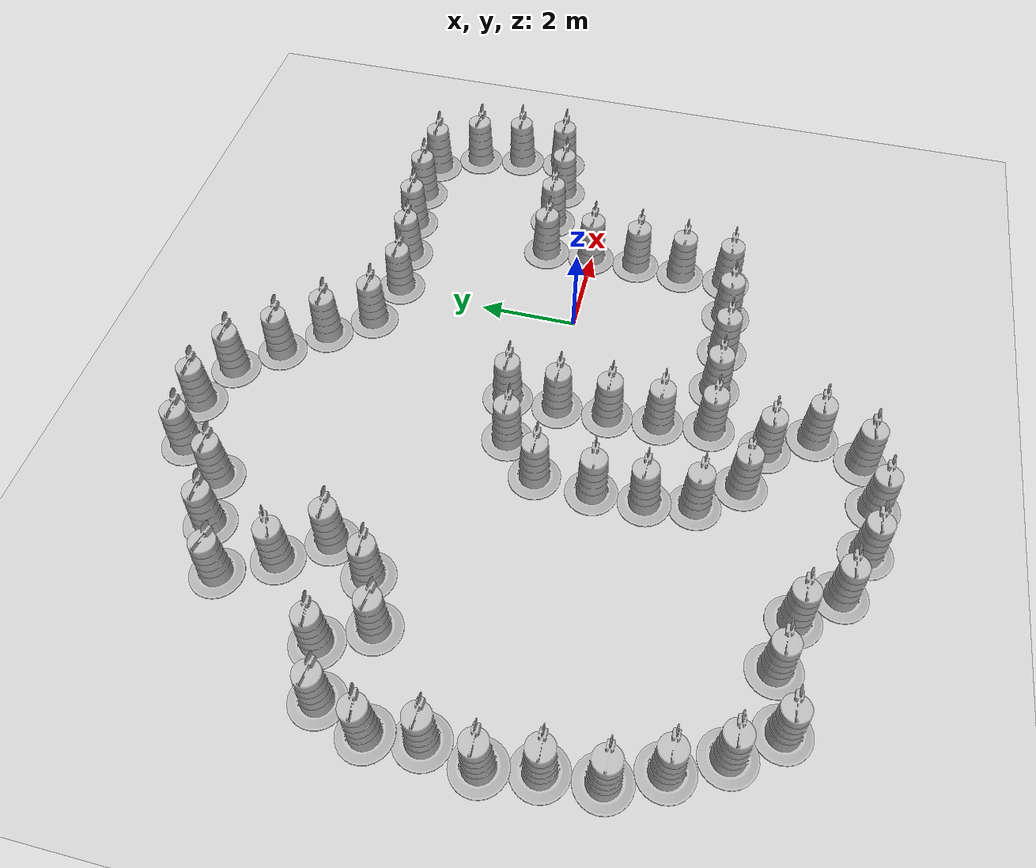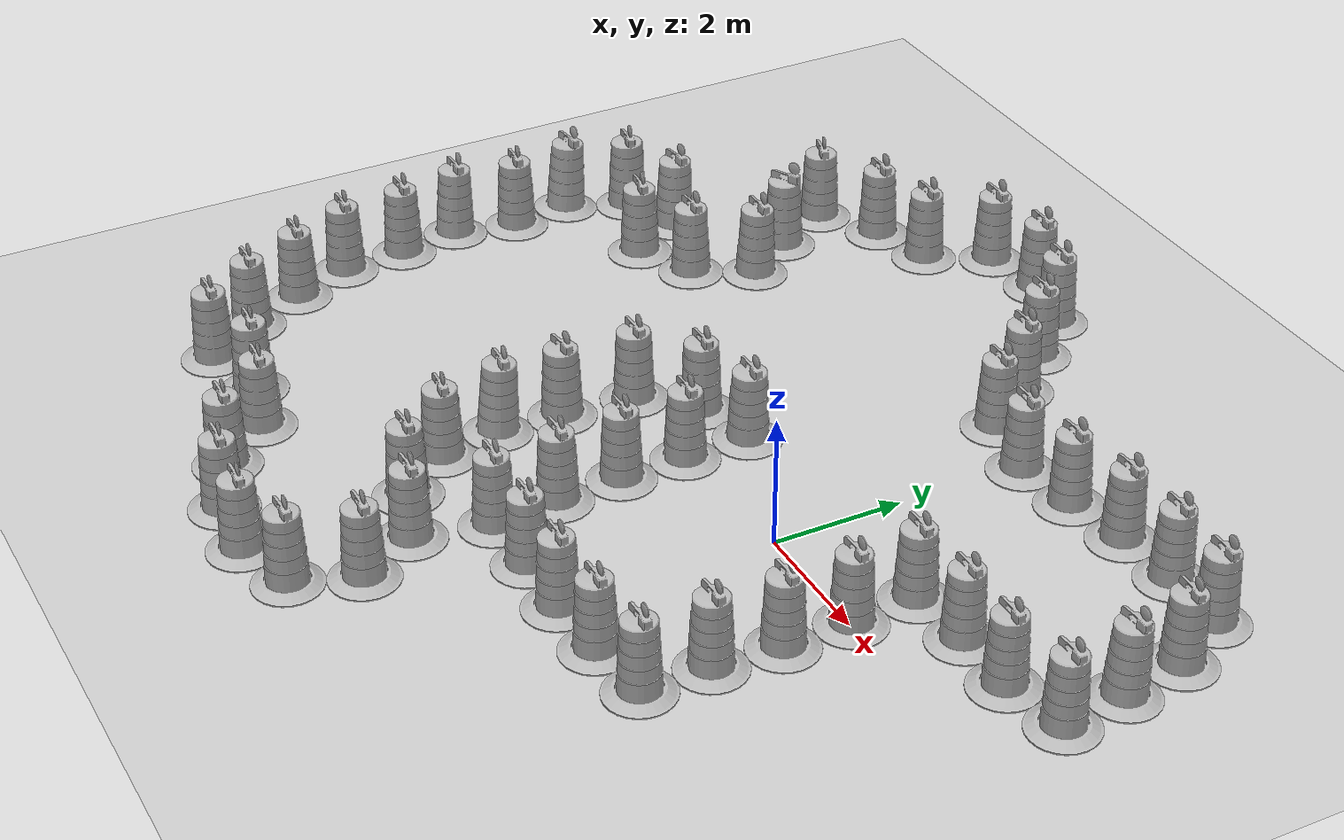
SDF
<sdf version="1.7">
 <world name="default">
  <model name="ground_plane">
   <static>1</static>
   <link name="link">
    <collision name="collision">
     <geometry><plane><normal>0 0 1</normal><size>100 100</size></plane></geometry>
     <surface>
      <contact><collide_bitmask>65535</collide_bitmask></contact>
      <friction><ode><mu>100</mu><mu2>50</mu2></ode></friction>
     </surface>
    </collision>
    <visual name="visual">
     <cast_shadows>0</cast_shadows>
     <geometry><plane><normal>0 0 1</normal><size>100 100</size></plane></geometry>
     <material>
      <script><uri>file://media/materials/scripts/gazebo.material</uri><name>Gazebo/Grey</name></script>
     </material>
    </visual>
   </link>
  </model>
  <light name="sun" type="directional">
   <pose>0 0 10 0 -0 0</pose>
   <diffuse>0.8 0.8 0.8 1</diffuse>
   <specular>0.2 0.2 0.2 1</specular>
   <attenuation>
    <range>1000</range>
    <constant>0.9</constant>
    <linear>0.01</linear>
    <quadratic>0.001</quadratic>
   </attenuation>
   <direction>-0.5 0.1 -0.9</direction>
   <spot><inner_angle>0</inner_angle><outer_angle>0</outer_angle><falloff>0</falloff></spot>
  </light>
  <scene><shadows>0</shadows><ambient>0.4 0.4 0.4 1</ambient><background>0.7 0.7 0.7 1</background></scene>
  <physics type="ode">
   <real_time_update_rate>1000</real_time_update_rate>
   <max_step_size>0.001</max_step_size>
   <real_time_factor>1</real_time_factor>
   <ode>
    <solver>
     <type>quick</type>
     <iters>150</iters>
     <precon_iters>0</precon_iters>
     <sor>1.4</sor>
     <use_dynamic_moi_rescaling>1</use_dynamic_moi_rescaling>
    </solver>
    <constraints>
     <cfm>1e-05</cfm>
     <erp>0.2</erp>
     <contact_max_correcting_vel>2000</contact_max_correcting_vel>
     <contact_surface_layer>0.01</contact_surface_layer>
    </constraints>
   </ode>
  </physics>
  <gravity>0 0 -9.8</gravity>
  <magnetic_field>6e-06 2.3e-05 -4.2e-05</magnetic_field>
  <atmosphere type="adiabatic"/>
  <audio><device>default</device></audio>
  <spherical_coordinates>
   <surface_model>EARTH_WGS84</surface_model>
   <latitude_deg>0</latitude_deg>
   <longitude_deg>0</longitude_deg>
   <elevation>0</elevation>
   <heading_deg>0</heading_deg>
  </spherical_coordinates>
  <model name="Construction Barrel">
   <link name="link">
    <inertial>
     <pose>0 0 0.4 0 -0 0</pose>
     <mass>500</mass>
     <inertia><ixx>51.2096</ixx><iyy>51.2096</iyy><izz>25</izz><ixy>0</ixy><ixz>0</ixz><iyz>0</iyz></inertia>
    </inertial>
    <collision name="collision">
     <geometry><mesh><uri>model://construction_barrel/meshes/construction_barrel.dae</uri></mesh></geometry>
    </collision>
    <visual name="visual">
     <geometry><mesh><uri>model://construction_barrel/meshes/construction_barrel.dae</uri></mesh></geometry>
    </visual>
   </link>
   <pose>2.00722 0.027339 -0 0 -0 0.002457</pose>
  </model>
  <model name="Construction Barrel_0">
   <link name="link">
    <inertial>
     <pose>0 0 0.4 0 -0 0</pose>
     <mass>500</mass>
     <inertia><ixx>51.2096</ixx><iyy>51.2096</iyy><izz>25</izz><ixy>0</ixy><ixz>0</ixz><iyz>0</iyz></inertia>
    </inertial>
    <collision name="collision">
     <geometry><mesh><uri>model://construction_barrel/meshes/construction_barrel.dae</uri></mesh></geometry>
    </collision>
    <visual name="visual">
     <geometry><mesh><uri>model://construction_barrel/meshes/construction_barrel.dae</uri></mesh></geometry>
    </visual>
   </link>
   <pose>2.01349 -0.992166 -0 0 -0 0.001407</pose>
  </model>
  <model name="Construction Barrel_1">
   <link name="link">
    <inertial>
     <pose>0 0 0.4 0 -0 0</pose>
     <mass>500</mass>
     <inertia><ixx>51.2096</ixx><iyy>51.2096</iyy><izz>25</izz><ixy>0</ixy><ixz>0</ixz><iyz>0</iyz></inertia>
    </inertial>
    <collision name="collision">
     <geometry><mesh><uri>model://construction_barrel/meshes/construction_barrel.dae</uri></mesh></geometry>
    </collision>
    <visual name="visual">
     <geometry><mesh><uri>model://construction_barrel/meshes/construction_barrel.dae</uri></mesh></geometry>
    </visual>
   </link>
   <pose>1.95296 -2.00412 -0 0 -0 0.005391</pose>
  </model>
  <model name="Construction Barrel_2">
   <link name="link">
    <inertial>
     <pose>0 0 0.4 0 -0 0</pose>
     <mass>500</mass>
     <inertia><ixx>51.2096</ixx><iyy>51.2096</iyy><izz>25</izz><ixy>0</ixy><ixz>0</ixz><iyz>0</iyz></inertia>
    </inertial>
    <collision name="collision">
     <geometry><mesh><uri>model://construction_barrel/meshes/construction_barrel.dae</uri></mesh></geometry>
    </collision>
    <visual name="visual">
     <geometry><mesh><uri>model://construction_barrel/meshes/construction_barrel.dae</uri></mesh></geometry>
    </visual>
   </link>
   <pose>1.94845 -3.02323 -0 0 -0 -0.001973</pose>
  </model>
  <model name="Construction Barrel_3">
   <link name="link">
    <inertial>
     <pose>0 0 0.4 0 -0 0</pose>
     <mass>500</mass>
     <inertia><ixx>51.2096</ixx><iyy>51.2096</iyy><izz>25</izz><ixy>0</ixy><ixz>0</ixz><iyz>0</iyz></inertia>
    </inertial>
    <collision name="collision">
     <geometry><mesh><uri>model://construction_barrel/meshes/construction_barrel.dae</uri></mesh></geometry>
    </collision>
    <visual name="visual">
     <geometry><mesh><uri>model://construction_barrel/meshes/construction_barrel.dae</uri></mesh></geometry>
    </visual>
   </link>
   <pose>0.943916 -3.1434 -0 0 -0 0.001491</pose>
  </model>
  <model name="Construction Barrel_4">
   <link name="link">
    <inertial>
     <pose>0 0 0.4 0 -0 0</pose>
     <mass>500</mass>
     <inertia><ixx>51.2096</ixx><iyy>51.2096</iyy><izz>25</izz><ixy>0</ixy><ixz>0</ixz><iyz>0</iyz></inertia>
    </inertial>
    <collision name="collision">
     <geometry><mesh><uri>model://construction_barrel/meshes/construction_barrel.dae</uri></mesh></geometry>
    </collision>
    <visual name="visual">
     <geometry><mesh><uri>model://construction_barrel/meshes/construction_barrel.dae</uri></mesh></geometry>
    </visual>
   </link>
   <pose>-0.069114 -3.1959 -0 0 -0 -0.003725</pose>
  </model>
  <model name="Construction Barrel_5">
   <link name="link">
    <inertial>
     <pose>0 0 0.4 0 -0 0</pose>
     <mass>500</mass>
     <inertia><ixx>51.2096</ixx><iyy>51.2096</iyy><izz>25</izz><ixy>0</ixy><ixz>0</ixz><iyz>0</iyz></inertia>
    </inertial>
    <collision name="collision">
     <geometry><mesh><uri>model://construction_barrel/meshes/construction_barrel.dae</uri></mesh></geometry>
    </collision>
    <visual name="visual">
     <geometry><mesh><uri>model://construction_barrel/meshes/construction_barrel.dae</uri></mesh></geometry>
    </visual>
   </link>
   <pose>-1.08575 -3.16894 -0 0 -0 -0.000321</pose>
  </model>
  <model name="Construction Barrel_6">
   <link name="link">
    <inertial>
     <pose>0 0 0.4 0 -0 0</pose>
     <mass>500</mass>
     <inertia><ixx>51.2096</ixx><iyy>51.2096</iyy><izz>25</izz><ixy>0</ixy><ixz>0</ixz><iyz>0</iyz></inertia>
    </inertial>
    <collision name="collision">
     <geometry><mesh><uri>model://construction_barrel/meshes/construction_barrel.dae</uri></mesh></geometry>
    </collision>
    <visual name="visual">
     <geometry><mesh><uri>model://construction_barrel/meshes/construction_barrel.dae</uri></mesh></geometry>
    </visual>
   </link>
   <pose>-2.10202 -3.1967 -0 0 -0 -0.001183</pose>
  </model>
  <model name="Construction Barrel_7">
   <link name="link">
    <inertial>
     <pose>0 0 0.4 0 -0 0</pose>
     <mass>500</mass>
     <inertia><ixx>51.2096</ixx><iyy>51.2096</iyy><izz>25</izz><ixy>0</ixy><ixz>0</ixz><iyz>0</iyz></inertia>
    </inertial>
    <collision name="collision">
     <geometry><mesh><uri>model://construction_barrel/meshes/construction_barrel.dae</uri></mesh></geometry>
    </collision>
    <visual name="visual">
     <geometry><mesh><uri>model://construction_barrel/meshes/construction_barrel.dae</uri></mesh></geometry>
    </visual>
   </link>
   <pose>-2.19964 -2.18789 -0 0 -0 -0.000117</pose>
  </model>
  <model name="Construction Barrel_8">
   <link name="link">
    <inertial>
     <pose>0 0 0.4 0 -0 0</pose>
     <mass>500</mass>
     <inertia><ixx>51.2096</ixx><iyy>51.2096</iyy><izz>25</izz><ixy>0</ixy><ixz>0</ixz><iyz>0</iyz></inertia>
    </inertial>
    <collision name="collision">
     <geometry><mesh><uri>model://construction_barrel/meshes/construction_barrel.dae</uri></mesh></geometry>
    </collision>
    <visual name="visual">
     <geometry><mesh><uri>model://construction_barrel/meshes/construction_barrel.dae</uri></mesh></geometry>
    </visual>
   </link>
   <pose>-2.2619 -1.1762 -0 0 -0 -0.000805</pose>
  </model>
  <model name="Construction Barrel_9">
   <link name="link">
    <inertial>
     <pose>0 0 0.4 0 -0 0</pose>
     <mass>500</mass>
     <inertia><ixx>51.2096</ixx><iyy>51.2096</iyy><izz>25</izz><ixy>0</ixy><ixz>0</ixz><iyz>0</iyz></inertia>
    </inertial>
    <collision name="collision">
     <geometry><mesh><uri>model://construction_barrel/meshes/construction_barrel.dae</uri></mesh></geometry>
    </collision>
    <visual name="visual">
     <geometry><mesh><uri>model://construction_barrel/meshes/construction_barrel.dae</uri></mesh></geometry>
    </visual>
   </link>
   <pose>-2.28528 -0.159574 -0 0 -0 -0.010256</pose>
  </model>
  <model name="Construction Barrel_10">
   <link name="link">
    <inertial>
     <pose>0 0 0.4 0 -0 0</pose>
     <mass>500</mass>
     <inertia><ixx>51.2096</ixx><iyy>51.2096</iyy><izz>25</izz><ixy>0</ixy><ixz>0</ixz><iyz>0</iyz></inertia>
    </inertial>
    <collision name="collision">
     <geometry><mesh><uri>model://construction_barrel/meshes/construction_barrel.dae</uri></mesh></geometry>
    </collision>
    <visual name="visual">
     <geometry><mesh><uri>model://construction_barrel/meshes/construction_barrel.dae</uri></mesh></geometry>
    </visual>
   </link>
   <pose>-2.30876 0.857256 0.012993 -0.003372 0.025489 -0.001325</pose>
  </model>
  <model name="Construction Barrel_11">
   <link name="link">
    <inertial>
     <pose>0 0 0.4 0 -0 0</pose>
     <mass>500</mass>
     <inertia><ixx>51.2096</ixx><iyy>51.2096</iyy><izz>25</izz><ixy>0</ixy><ixz>0</ixz><iyz>0</iyz></inertia>
    </inertial>
    <collision name="collision">
     <geometry><mesh><uri>model://construction_barrel/meshes/construction_barrel.dae</uri></mesh></geometry>
    </collision>
    <visual name="visual">
     <geometry><mesh><uri>model://construction_barrel/meshes/construction_barrel.dae</uri></mesh></geometry>
    </visual>
   </link>
   <pose>1.9397 1.0392 -0 0 -0 -0.023846</pose>
  </model>
  <model name="Construction Barrel_12">
   <link name="link">
    <inertial>
     <pose>0 0 0.4 0 -0 0</pose>
     <mass>500</mass>
     <inertia><ixx>51.2096</ixx><iyy>51.2096</iyy><izz>25</izz><ixy>0</ixy><ixz>0</ixz><iyz>0</iyz></inertia>
    </inertial>
    <collision name="collision">
     <geometry><mesh><uri>model://construction_barrel/meshes/construction_barrel.dae</uri></mesh></geometry>
    </collision>
    <visual name="visual">
     <geometry><mesh><uri>model://construction_barrel/meshes/construction_barrel.dae</uri></mesh></geometry>
    </visual>
   </link>
   <pose>2.94991 1.1258 -0 0 -0 0.019854</pose>
  </model>
  <model name="Construction Barrel_13">
   <link name="link">
    <inertial>
     <pose>0 0 0.4 0 -0 0</pose>
     <mass>500</mass>
     <inertia><ixx>51.2096</ixx><iyy>51.2096</iyy><izz>25</izz><ixy>0</ixy><ixz>0</ixz><iyz>0</iyz></inertia>
    </inertial>
    <collision name="collision">
     <geometry><mesh><uri>model://construction_barrel/meshes/construction_barrel.dae</uri></mesh></geometry>
    </collision>
    <visual name="visual">
     <geometry><mesh><uri>model://construction_barrel/meshes/construction_barrel.dae</uri></mesh></geometry>
    </visual>
   </link>
   <pose>3.96748 1.10297 -0 0 -0 -0.030201</pose>
  </model>
  <model name="Construction Barrel_14">
   <link name="link">
    <inertial>
     <pose>0 0 0.4 0 -0 0</pose>
     <mass>500</mass>
     <inertia><ixx>51.2096</ixx><iyy>51.2096</iyy><izz>25</izz><ixy>0</ixy><ixz>0</ixz><iyz>0</iyz></inertia>
    </inertial>
    <collision name="collision">
     <geometry><mesh><uri>model://construction_barrel/meshes/construction_barrel.dae</uri></mesh></geometry>
    </collision>
    <visual name="visual">
     <geometry><mesh><uri>model://construction_barrel/meshes/construction_barrel.dae</uri></mesh></geometry>
    </visual>
   </link>
   <pose>4.96117 1.31605 -0 1e-06 -1e-06 0.00534</pose>
  </model>
  <model name="Construction Barrel_15">
   <link name="link">
    <inertial>
     <pose>0 0 0.4 0 -0 0</pose>
     <mass>500</mass>
     <inertia><ixx>51.2096</ixx><iyy>51.2096</iyy><izz>25</izz><ixy>0</ixy><ixz>0</ixz><iyz>0</iyz></inertia>
    </inertial>
    <collision name="collision">
     <geometry><mesh><uri>model://construction_barrel/meshes/construction_barrel.dae</uri></mesh></geometry>
    </collision>
    <visual name="visual">
     <geometry><mesh><uri>model://construction_barrel/meshes/construction_barrel.dae</uri></mesh></geometry>
    </visual>
   </link>
   <pose>4.84314 2.31001 0.01226 -0.024045 0.003155 0.077075</pose>
  </model>
  <model name="Construction Barrel_16">
   <link name="link">
    <inertial>
     <pose>0 0 0.4 0 -0 0</pose>
     <mass>500</mass>
     <inertia><ixx>51.2096</ixx><iyy>51.2096</iyy><izz>25</izz><ixy>0</ixy><ixz>0</ixz><iyz>0</iyz></inertia>
    </inertial>
    <collision name="collision">
     <geometry><mesh><uri>model://construction_barrel/meshes/construction_barrel.dae</uri></mesh></geometry>
    </collision>
    <visual name="visual">
     <geometry><mesh><uri>model://construction_barrel/meshes/construction_barrel.dae</uri></mesh></geometry>
    </visual>
   </link>
   <pose>4.66109 3.32129 -0 0 -0 -0.081518</pose>
  </model>
  <model name="Construction Barrel_17">
   <link name="link">
    <inertial>
     <pose>0 0 0.4 0 -0 0</pose>
     <mass>500</mass>
     <inertia><ixx>51.2096</ixx><iyy>51.2096</iyy><izz>25</izz><ixy>0</ixy><ixz>0</ixz><iyz>0</iyz></inertia>
    </inertial>
    <collision name="collision">
     <geometry><mesh><uri>model://construction_barrel/meshes/construction_barrel.dae</uri></mesh></geometry>
    </collision>
    <visual name="visual">
     <geometry><mesh><uri>model://construction_barrel/meshes/construction_barrel.dae</uri></mesh></geometry>
    </visual>
   </link>
   <pose>4.16276 4.21214 -0 0 -0 -0.001944</pose>
  </model>
  <model name="Construction Barrel_18">
   <link name="link">
    <inertial>
     <pose>0 0 0.4 0 -0 0</pose>
     <mass>500</mass>
     <inertia><ixx>51.2096</ixx><iyy>51.2096</iyy><izz>25</izz><ixy>0</ixy><ixz>0</ixz><iyz>0</iyz></inertia>
    </inertial>
    <collision name="collision">
     <geometry><mesh><uri>model://construction_barrel/meshes/construction_barrel.dae</uri></mesh></geometry>
    </collision>
    <visual name="visual">
     <geometry><mesh><uri>model://construction_barrel/meshes/construction_barrel.dae</uri></mesh></geometry>
    </visual>
   </link>
   <pose>3.13549 4.27048 1e-06 -2e-06 1.5e-05 -0.015045</pose>
  </model>
  <model name="Construction Barrel_19">
   <link name="link">
    <inertial>
     <pose>0 0 0.4 0 -0 0</pose>
     <mass>500</mass>
     <inertia><ixx>51.2096</ixx><iyy>51.2096</iyy><izz>25</izz><ixy>0</ixy><ixz>0</ixz><iyz>0</iyz></inertia>
    </inertial>
    <collision name="collision">
     <geometry><mesh><uri>model://construction_barrel/meshes/construction_barrel.dae</uri></mesh></geometry>
    </collision>
    <visual name="visual">
     <geometry><mesh><uri>model://construction_barrel/meshes/construction_barrel.dae</uri></mesh></geometry>
    </visual>
   </link>
   <pose>2.123 4.20249 -0 2e-06 -0 0.028482</pose>
  </model>
  <model name="Construction Barrel_20">
   <link name="link">
    <inertial>
     <pose>0 0 0.4 0 -0 0</pose>
     <mass>500</mass>
     <inertia><ixx>51.2096</ixx><iyy>51.2096</iyy><izz>25</izz><ixy>0</ixy><ixz>0</ixz><iyz>0</iyz></inertia>
    </inertial>
    <collision name="collision">
     <geometry><mesh><uri>model://construction_barrel/meshes/construction_barrel.dae</uri></mesh></geometry>
    </collision>
    <visual name="visual">
     <geometry><mesh><uri>model://construction_barrel/meshes/construction_barrel.dae</uri></mesh></geometry>
    </visual>
   </link>
   <pose>1.13948 4.02403 0.012039 0.003121 -0.023611 0.018648</pose>
  </model>
  <model name="Construction Barrel_21">
   <link name="link">
    <inertial>
     <pose>0 0 0.4 0 -0 0</pose>
     <mass>500</mass>
     <inertia><ixx>51.2096</ixx><iyy>51.2096</iyy><izz>25</izz><ixy>0</ixy><ixz>0</ixz><iyz>0</iyz></inertia>
    </inertial>
    <collision name="collision">
     <geometry><mesh><uri>model://construction_barrel/meshes/construction_barrel.dae</uri></mesh></geometry>
    </collision>
    <visual name="visual">
     <geometry><mesh><uri>model://construction_barrel/meshes/construction_barrel.dae</uri></mesh></geometry>
    </visual>
   </link>
   <pose>0.128952 3.90075 -0 0 -0 -0.028225</pose>
  </model>
  <model name="Construction Barrel_22">
   <link name="link">
    <inertial>
     <pose>0 0 0.4 0 -0 0</pose>
     <mass>500</mass>
     <inertia><ixx>51.2096</ixx><iyy>51.2096</iyy><izz>25</izz><ixy>0</ixy><ixz>0</ixz><iyz>0</iyz></inertia>
    </inertial>
    <collision name="collision">
     <geometry><mesh><uri>model://construction_barrel/meshes/construction_barrel.dae</uri></mesh></geometry>
    </collision>
    <visual name="visual">
     <geometry><mesh><uri>model://construction_barrel/meshes/construction_barrel.dae</uri></mesh></geometry>
    </visual>
   </link>
   <pose>-3.27832 0.6175 -2e-06 7e-06 -4e-06 0.000139</pose>
  </model>
  <model name="Construction Barrel_23">
   <link name="link">
    <inertial>
     <pose>0 0 0.4 0 -0 0</pose>
     <mass>500</mass>
     <inertia><ixx>51.2096</ixx><iyy>51.2096</iyy><izz>25</izz><ixy>0</ixy><ixz>0</ixz><iyz>0</iyz></inertia>
    </inertial>
    <collision name="collision">
     <geometry><mesh><uri>model://construction_barrel/meshes/construction_barrel.dae</uri></mesh></geometry>
    </collision>
    <visual name="visual">
     <geometry><mesh><uri>model://construction_barrel/meshes/construction_barrel.dae</uri></mesh></geometry>
    </visual>
   </link>
   <pose>-4.00005 -0.102762 -0 0 -0 0.002263</pose>
  </model>
  <model name="Construction Barrel_24">
   <link name="link">
    <inertial>
     <pose>0 0 0.4 0 -0 0</pose>
     <mass>500</mass>
     <inertia><ixx>51.2096</ixx><iyy>51.2096</iyy><izz>25</izz><ixy>0</ixy><ixz>0</ixz><iyz>0</iyz></inertia>
    </inertial>
    <collision name="collision">
     <geometry><mesh><uri>model://construction_barrel/meshes/construction_barrel.dae</uri></mesh></geometry>
    </collision>
    <visual name="visual">
     <geometry><mesh><uri>model://construction_barrel/meshes/construction_barrel.dae</uri></mesh></geometry>
    </visual>
   </link>
   <pose>-4.07686 -1.22918 -0 -1e-06 -0 0.107443</pose>
  </model>
  <model name="Construction Barrel_25">
   <link name="link">
    <inertial>
     <pose>0 0 0.4 0 -0 0</pose>
     <mass>500</mass>
     <inertia><ixx>51.2096</ixx><iyy>51.2096</iyy><izz>25</izz><ixy>0</ixy><ixz>0</ixz><iyz>0</iyz></inertia>
    </inertial>
    <collision name="collision">
     <geometry><mesh><uri>model://construction_barrel/meshes/construction_barrel.dae</uri></mesh></geometry>
    </collision>
    <visual name="visual">
     <geometry><mesh><uri>model://construction_barrel/meshes/construction_barrel.dae</uri></mesh></geometry>
    </visual>
   </link>
   <pose>-4.08696 -2.24504 0.028479 -0.055901 -0.007354 -0.046643</pose>
  </model>
  <model name="Construction Barrel_26">
   <link name="link">
    <inertial>
     <pose>0 0 0.4 0 -0 0</pose>
     <mass>500</mass>
     <inertia><ixx>51.2096</ixx><iyy>51.2096</iyy><izz>25</izz><ixy>0</ixy><ixz>0</ixz><iyz>0</iyz></inertia>
    </inertial>
    <collision name="collision">
     <geometry><mesh><uri>model://construction_barrel/meshes/construction_barrel.dae</uri></mesh></geometry>
    </collision>
    <visual name="visual">
     <geometry><mesh><uri>model://construction_barrel/meshes/construction_barrel.dae</uri></mesh></geometry>
    </visual>
   </link>
   <pose>-3.9248 -3.16782 -1.2e-05 -1.3e-05 -3e-06 -0.07348</pose>
  </model>
  <model name="Construction Barrel_27">
   <link name="link">
    <inertial>
     <pose>0 0 0.4 0 -0 0</pose>
     <mass>500</mass>
     <inertia><ixx>51.2096</ixx><iyy>51.2096</iyy><izz>25</izz><ixy>0</ixy><ixz>0</ixz><iyz>0</iyz></inertia>
    </inertial>
    <collision name="collision">
     <geometry><mesh><uri>model://construction_barrel/meshes/construction_barrel.dae</uri></mesh></geometry>
    </collision>
    <visual name="visual">
     <geometry><mesh><uri>model://construction_barrel/meshes/construction_barrel.dae</uri></mesh></geometry>
    </visual>
   </link>
   <pose>-3.29762 -3.96608 -0 0 -0 0.009727</pose>
  </model>
  <model name="Construction Barrel_28">
   <link name="link">
    <inertial>
     <pose>0 0 0.4 0 -0 0</pose>
     <mass>500</mass>
     <inertia><ixx>51.2096</ixx><iyy>51.2096</iyy><izz>25</izz><ixy>0</ixy><ixz>0</ixz><iyz>0</iyz></inertia>
    </inertial>
    <collision name="collision">
     <geometry><mesh><uri>model://construction_barrel/meshes/construction_barrel.dae</uri></mesh></geometry>
    </collision>
    <visual name="visual">
     <geometry><mesh><uri>model://construction_barrel/meshes/construction_barrel.dae</uri></mesh></geometry>
    </visual>
   </link>
   <pose>-2.34875 -4.31685 -0 0 -0 0.01074</pose>
  </model>
  <model name="Construction Barrel_29">
   <link name="link">
    <inertial>
     <pose>0 0 0.4 0 -0 0</pose>
     <mass>500</mass>
     <inertia><ixx>51.2096</ixx><iyy>51.2096</iyy><izz>25</izz><ixy>0</ixy><ixz>0</ixz><iyz>0</iyz></inertia>
    </inertial>
    <collision name="collision">
     <geometry><mesh><uri>model://construction_barrel/meshes/construction_barrel.dae</uri></mesh></geometry>
    </collision>
    <visual name="visual">
     <geometry><mesh><uri>model://construction_barrel/meshes/construction_barrel.dae</uri></mesh></geometry>
    </visual>
   </link>
   <pose>-1.84068 -5.20102 -0 0 -0 -0.014225</pose>
  </model>
  <model name="Construction Barrel_30">
   <link name="link">
    <inertial>
     <pose>0 0 0.4 0 -0 0</pose>
     <mass>500</mass>
     <inertia><ixx>51.2096</ixx><iyy>51.2096</iyy><izz>25</izz><ixy>0</ixy><ixz>0</ixz><iyz>0</iyz></inertia>
    </inertial>
    <collision name="collision">
     <geometry><mesh><uri>model://construction_barrel/meshes/construction_barrel.dae</uri></mesh></geometry>
    </collision>
    <visual name="visual">
     <geometry><mesh><uri>model://construction_barrel/meshes/construction_barrel.dae</uri></mesh></geometry>
    </visual>
   </link>
   <pose>-2.20052 -6.1484 -0 0 -0 0.026031</pose>
  </model>
  <model name="Construction Barrel_31">
   <link name="link">
    <inertial>
     <pose>0 0 0.4 0 -0 0</pose>
     <mass>500</mass>
     <inertia><ixx>51.2096</ixx><iyy>51.2096</iyy><izz>25</izz><ixy>0</ixy><ixz>0</ixz><iyz>0</iyz></inertia>
    </inertial>
    <collision name="collision">
     <geometry><mesh><uri>model://construction_barrel/meshes/construction_barrel.dae</uri></mesh></geometry>
    </collision>
    <visual name="visual">
     <geometry><mesh><uri>model://construction_barrel/meshes/construction_barrel.dae</uri></mesh></geometry>
    </visual>
   </link>
   <pose>-3.17929 -6.42913 -0 0 -0 -0.01924</pose>
  </model>
  <model name="Construction Barrel_32">
   <link name="link">
    <inertial>
     <pose>0 0 0.4 0 -0 0</pose>
     <mass>500</mass>
     <inertia><ixx>51.2096</ixx><iyy>51.2096</iyy><izz>25</izz><ixy>0</ixy><ixz>0</ixz><iyz>0</iyz></inertia>
    </inertial>
    <collision name="collision">
     <geometry><mesh><uri>model://construction_barrel/meshes/construction_barrel.dae</uri></mesh></geometry>
    </collision>
    <visual name="visual">
     <geometry><mesh><uri>model://construction_barrel/meshes/construction_barrel.dae</uri></mesh></geometry>
    </visual>
   </link>
   <pose>-4.18788 -6.33225 -0 0 -0 -0.021681</pose>
  </model>
  <model name="Construction Barrel_33">
   <link name="link">
    <inertial>
     <pose>0 0 0.4 0 -0 0</pose>
     <mass>500</mass>
     <inertia><ixx>51.2096</ixx><iyy>51.2096</iyy><izz>25</izz><ixy>0</ixy><ixz>0</ixz><iyz>0</iyz></inertia>
    </inertial>
    <collision name="collision">
     <geometry><mesh><uri>model://construction_barrel/meshes/construction_barrel.dae</uri></mesh></geometry>
    </collision>
    <visual name="visual">
     <geometry><mesh><uri>model://construction_barrel/meshes/construction_barrel.dae</uri></mesh></geometry>
    </visual>
   </link>
   <pose>-5.15218 -5.93849 -0 0 -0 -0.000285</pose>
  </model>
  <model name="Construction Barrel_34">
   <link name="link">
    <inertial>
     <pose>0 0 0.4 0 -0 0</pose>
     <mass>500</mass>
     <inertia><ixx>51.2096</ixx><iyy>51.2096</iyy><izz>25</izz><ixy>0</ixy><ixz>0</ixz><iyz>0</iyz></inertia>
    </inertial>
    <collision name="collision">
     <geometry><mesh><uri>model://construction_barrel/meshes/construction_barrel.dae</uri></mesh></geometry>
    </collision>
    <visual name="visual">
     <geometry><mesh><uri>model://construction_barrel/meshes/construction_barrel.dae</uri></mesh></geometry>
    </visual>
   </link>
   <pose>-0.937646 4.16659 -0 0 -0 0.009058</pose>
  </model>
  <model name="Construction Barrel_35">
   <link name="link">
    <inertial>
     <pose>0 0 0.4 0 -0 0</pose>
     <mass>500</mass>
     <inertia><ixx>51.2096</ixx><iyy>51.2096</iyy><izz>25</izz><ixy>0</ixy><ixz>0</ixz><iyz>0</iyz></inertia>
    </inertial>
    <collision name="collision">
     <geometry><mesh><uri>model://construction_barrel/meshes/construction_barrel.dae</uri></mesh></geometry>
    </collision>
    <visual name="visual">
     <geometry><mesh><uri>model://construction_barrel/meshes/construction_barrel.dae</uri></mesh></geometry>
    </visual>
   </link>
   <pose>-1.54129 4.97889 -0 0 -0 0.006891</pose>
  </model>
  <model name="Construction Barrel_36">
   <link name="link">
    <inertial>
     <pose>0 0 0.4 0 -0 0</pose>
     <mass>500</mass>
     <inertia><ixx>51.2096</ixx><iyy>51.2096</iyy><izz>25</izz><ixy>0</ixy><ixz>0</ixz><iyz>0</iyz></inertia>
    </inertial>
    <collision name="collision">
     <geometry><mesh><uri>model://construction_barrel/meshes/construction_barrel.dae</uri></mesh></geometry>
    </collision>
    <visual name="visual">
     <geometry><mesh><uri>model://construction_barrel/meshes/construction_barrel.dae</uri></mesh></geometry>
    </visual>
   </link>
   <pose>-2.22484 5.75312 -0 0 -0 -0.001119</pose>
  </model>
  <model name="Construction Barrel_37">
   <link name="link">
    <inertial>
     <pose>0 0 0.4 0 -0 0</pose>
     <mass>500</mass>
     <inertia><ixx>51.2096</ixx><iyy>51.2096</iyy><izz>25</izz><ixy>0</ixy><ixz>0</ixz><iyz>0</iyz></inertia>
    </inertial>
    <collision name="collision">
     <geometry><mesh><uri>model://construction_barrel/meshes/construction_barrel.dae</uri></mesh></geometry>
    </collision>
    <visual name="visual">
     <geometry><mesh><uri>model://construction_barrel/meshes/construction_barrel.dae</uri></mesh></geometry>
    </visual>
   </link>
   <pose>-2.89092 6.51677 -0 0 -0 -0.001025</pose>
  </model>
  <model name="Construction Barrel_38">
   <link name="link">
    <inertial>
     <pose>0 0 0.4 0 -0 0</pose>
     <mass>500</mass>
     <inertia><ixx>51.2096</ixx><iyy>51.2096</iyy><izz>25</izz><ixy>0</ixy><ixz>0</ixz><iyz>0</iyz></inertia>
    </inertial>
    <collision name="collision">
     <geometry><mesh><uri>model://construction_barrel/meshes/construction_barrel.dae</uri></mesh></geometry>
    </collision>
    <visual name="visual">
     <geometry><mesh><uri>model://construction_barrel/meshes/construction_barrel.dae</uri></mesh></geometry>
    </visual>
   </link>
   <pose>-3.86159 6.82855 -0 0 -0 0</pose>
  </model>
  <model name="Construction Barrel_39">
   <link name="link">
    <inertial>
     <pose>0 0 0.4 0 -0 0</pose>
     <mass>500</mass>
     <inertia><ixx>51.2096</ixx><iyy>51.2096</iyy><izz>25</izz><ixy>0</ixy><ixz>0</ixz><iyz>0</iyz></inertia>
    </inertial>
    <collision name="collision">
     <geometry><mesh><uri>model://construction_barrel/meshes/construction_barrel.dae</uri></mesh></geometry>
    </collision>
    <visual name="visual">
     <geometry><mesh><uri>model://construction_barrel/meshes/construction_barrel.dae</uri></mesh></geometry>
    </visual>
   </link>
   <pose>-4.89174 6.67248 -0 0 -0 0</pose>
  </model>
  <model name="Construction Barrel_40">
   <link name="link">
    <inertial>
     <pose>0 0 0.4 0 -0 0</pose>
     <mass>500</mass>
     <inertia><ixx>51.2096</ixx><iyy>51.2096</iyy><izz>25</izz><ixy>0</ixy><ixz>0</ixz><iyz>0</iyz></inertia>
    </inertial>
    <collision name="collision">
     <geometry><mesh><uri>model://construction_barrel/meshes/construction_barrel.dae</uri></mesh></geometry>
    </collision>
    <visual name="visual">
     <geometry><mesh><uri>model://construction_barrel/meshes/construction_barrel.dae</uri></mesh></geometry>
    </visual>
   </link>
   <pose>-5.44652 5.76058 -0 0 -0 0</pose>
  </model>
  <model name="Construction Barrel_41">
   <link name="link">
    <inertial>
     <pose>0 0 0.4 0 -0 0</pose>
     <mass>500</mass>
     <inertia><ixx>51.2096</ixx><iyy>51.2096</iyy><izz>25</izz><ixy>0</ixy><ixz>0</ixz><iyz>0</iyz></inertia>
    </inertial>
    <collision name="collision">
     <geometry><mesh><uri>model://construction_barrel/meshes/construction_barrel.dae</uri></mesh></geometry>
    </collision>
    <visual name="visual">
     <geometry><mesh><uri>model://construction_barrel/meshes/construction_barrel.dae</uri></mesh></geometry>
    </visual>
   </link>
   <pose>-5.82093 -5.17369 0.011979 0.003108 0.02349 -0.036022</pose>
  </model>
  <model name="Construction Barrel_42">
   <link name="link">
    <inertial>
     <pose>0 0 0.4 0 -0 0</pose>
     <mass>500</mass>
     <inertia><ixx>51.2096</ixx><iyy>51.2096</iyy><izz>25</izz><ixy>0</ixy><ixz>0</ixz><iyz>0</iyz></inertia>
    </inertial>
    <collision name="collision">
     <geometry><mesh><uri>model://construction_barrel/meshes/construction_barrel.dae</uri></mesh></geometry>
    </collision>
    <visual name="visual">
     <geometry><mesh><uri>model://construction_barrel/meshes/construction_barrel.dae</uri></mesh></geometry>
    </visual>
   </link>
   <pose>-6.43434 5.49219 -0 0 -0 0</pose>
  </model>
  <model name="Construction Barrel_43">
   <link name="link">
    <inertial>
     <pose>0 0 0.4 0 -0 0</pose>
     <mass>500</mass>
     <inertia><ixx>51.2096</ixx><iyy>51.2096</iyy><izz>25</izz><ixy>0</ixy><ixz>0</ixz><iyz>0</iyz></inertia>
    </inertial>
    <collision name="collision">
     <geometry><mesh><uri>model://construction_barrel/meshes/construction_barrel.dae</uri></mesh></geometry>
    </collision>
    <visual name="visual">
     <geometry><mesh><uri>model://construction_barrel/meshes/construction_barrel.dae</uri></mesh></geometry>
    </visual>
   </link>
   <pose>-7.35464 4.95051 -0 0 -0 -0.26893</pose>
  </model>
  <model name="Construction Barrel_44">
   <link name="link">
    <inertial>
     <pose>0 0 0.4 0 -0 0</pose>
     <mass>500</mass>
     <inertia><ixx>51.2096</ixx><iyy>51.2096</iyy><izz>25</izz><ixy>0</ixy><ixz>0</ixz><iyz>0</iyz></inertia>
    </inertial>
    <collision name="collision">
     <geometry><mesh><uri>model://construction_barrel/meshes/construction_barrel.dae</uri></mesh></geometry>
    </collision>
    <visual name="visual">
     <geometry><mesh><uri>model://construction_barrel/meshes/construction_barrel.dae</uri></mesh></geometry>
    </visual>
   </link>
   <pose>-6.836 3.98714 -2e-06 7e-06 -4e-06 0.512809</pose>
  </model>
  <model name="Construction Barrel_45">
   <link name="link">
    <inertial>
     <pose>0 0 0.4 0 -0 0</pose>
     <mass>500</mass>
     <inertia><ixx>51.2096</ixx><iyy>51.2096</iyy><izz>25</izz><ixy>0</ixy><ixz>0</ixz><iyz>0</iyz></inertia>
    </inertial>
    <collision name="collision">
     <geometry><mesh><uri>model://construction_barrel/meshes/construction_barrel.dae</uri></mesh></geometry>
    </collision>
    <visual name="visual">
     <geometry><mesh><uri>model://construction_barrel/meshes/construction_barrel.dae</uri></mesh></geometry>
    </visual>
   </link>
   <pose>-6.25603 3.15498 0.010759 -0.017053 0.012749 0.034073</pose>
  </model>
  <model name="Construction Barrel_46">
   <link name="link">
    <inertial>
     <pose>0 0 0.4 0 -0 0</pose>
     <mass>500</mass>
     <inertia><ixx>51.2096</ixx><iyy>51.2096</iyy><izz>25</izz><ixy>0</ixy><ixz>0</ixz><iyz>0</iyz></inertia>
    </inertial>
    <collision name="collision">
     <geometry><mesh><uri>model://construction_barrel/meshes/construction_barrel.dae</uri></mesh></geometry>
    </collision>
    <visual name="visual">
     <geometry><mesh><uri>model://construction_barrel/meshes/construction_barrel.dae</uri></mesh></geometry>
    </visual>
   </link>
   <pose>-6.76538 2.28143 -3.6e-05 1e-05 -0 0.04306</pose>
  </model>
  <model name="Construction Barrel_47">
   <link name="link">
    <inertial>
     <pose>0 0 0.4 0 -0 0</pose>
     <mass>500</mass>
     <inertia><ixx>51.2096</ixx><iyy>51.2096</iyy><izz>25</izz><ixy>0</ixy><ixz>0</ixz><iyz>0</iyz></inertia>
    </inertial>
    <collision name="collision">
     <geometry><mesh><uri>model://construction_barrel/meshes/construction_barrel.dae</uri></mesh></geometry>
    </collision>
    <visual name="visual">
     <geometry><mesh><uri>model://construction_barrel/meshes/construction_barrel.dae</uri></mesh></geometry>
    </visual>
   </link>
   <pose>-7.68491 1.85179 -3e-05 -2.6e-05 -3.4e-05 -0.134209</pose>
  </model>
  <model name="Construction Barrel_48">
   <link name="link">
    <inertial>
     <pose>0 0 0.4 0 -0 0</pose>
     <mass>500</mass>
     <inertia><ixx>51.2096</ixx><iyy>51.2096</iyy><izz>25</izz><ixy>0</ixy><ixz>0</ixz><iyz>0</iyz></inertia>
    </inertial>
    <collision name="collision">
     <geometry><mesh><uri>model://construction_barrel/meshes/construction_barrel.dae</uri></mesh></geometry>
    </collision>
    <visual name="visual">
     <geometry><mesh><uri>model://construction_barrel/meshes/construction_barrel.dae</uri></mesh></geometry>
    </visual>
   </link>
   <pose>-6.79426 -4.93689 -0 0 -0 -0.037492</pose>
  </model>
  <model name="Construction Barrel_49">
   <link name="link">
    <inertial>
     <pose>0 0 0.4 0 -0 0</pose>
     <mass>500</mass>
     <inertia><ixx>51.2096</ixx><iyy>51.2096</iyy><izz>25</izz><ixy>0</ixy><ixz>0</ixz><iyz>0</iyz></inertia>
    </inertial>
    <collision name="collision">
     <geometry><mesh><uri>model://construction_barrel/meshes/construction_barrel.dae</uri></mesh></geometry>
    </collision>
    <visual name="visual">
     <geometry><mesh><uri>model://construction_barrel/meshes/construction_barrel.dae</uri></mesh></geometry>
    </visual>
   </link>
   <pose>-7.85012 -5.17824 -0 0 -0 0.000734</pose>
  </model>
  <model name="Construction Barrel_50">
   <link name="link">
    <inertial>
     <pose>0 0 0.4 0 -0 0</pose>
     <mass>500</mass>
     <inertia><ixx>51.2096</ixx><iyy>51.2096</iyy><izz>25</izz><ixy>0</ixy><ixz>0</ixz><iyz>0</iyz></inertia>
    </inertial>
    <collision name="collision">
     <geometry><mesh><uri>model://construction_barrel/meshes/construction_barrel.dae</uri></mesh></geometry>
    </collision>
    <visual name="visual">
     <geometry><mesh><uri>model://construction_barrel/meshes/construction_barrel.dae</uri></mesh></geometry>
    </visual>
   </link>
   <pose>-8.44946 -4.36331 -0 0 -0 0.00067</pose>
  </model>
  <model name="Construction Barrel_51">
   <link name="link">
    <inertial>
     <pose>0 0 0.4 0 -0 0</pose>
     <mass>500</mass>
     <inertia><ixx>51.2096</ixx><iyy>51.2096</iyy><izz>25</izz><ixy>0</ixy><ixz>0</ixz><iyz>0</iyz></inertia>
    </inertial>
    <collision name="collision">
     <geometry><mesh><uri>model://construction_barrel/meshes/construction_barrel.dae</uri></mesh></geometry>
    </collision>
    <visual name="visual">
     <geometry><mesh><uri>model://construction_barrel/meshes/construction_barrel.dae</uri></mesh></geometry>
    </visual>
   </link>
   <pose>-8.90949 -3.43248 -0 0 -0 0</pose>
  </model>
  <model name="Construction Barrel_52">
   <link name="link">
    <inertial>
     <pose>0 0 0.4 0 -0 0</pose>
     <mass>500</mass>
     <inertia><ixx>51.2096</ixx><iyy>51.2096</iyy><izz>25</izz><ixy>0</ixy><ixz>0</ixz><iyz>0</iyz></inertia>
    </inertial>
    <collision name="collision">
     <geometry><mesh><uri>model://construction_barrel/meshes/construction_barrel.dae</uri></mesh></geometry>
    </collision>
    <visual name="visual">
     <geometry><mesh><uri>model://construction_barrel/meshes/construction_barrel.dae</uri></mesh></geometry>
    </visual>
   </link>
   <pose>-8.18238 2.72568 0.010963 -0.020041 -0.008279 0.127802</pose>
  </model>
  <model name="Construction Barrel_53">
   <link name="link">
    <inertial>
     <pose>0 0 0.4 0 -0 0</pose>
     <mass>500</mass>
     <inertia><ixx>51.2096</ixx><iyy>51.2096</iyy><izz>25</izz><ixy>0</ixy><ixz>0</ixz><iyz>0</iyz></inertia>
    </inertial>
    <collision name="collision">
     <geometry><mesh><uri>model://construction_barrel/meshes/construction_barrel.dae</uri></mesh></geometry>
    </collision>
    <visual name="visual">
     <geometry><mesh><uri>model://construction_barrel/meshes/construction_barrel.dae</uri></mesh></geometry>
    </visual>
   </link>
   <pose>-9.30706 -2.49876 -0 0 -0 0</pose>
  </model>
  <model name="Construction Barrel_54">
   <link name="link">
    <inertial>
     <pose>0 0 0.4 0 -0 0</pose>
     <mass>500</mass>
     <inertia><ixx>51.2096</ixx><iyy>51.2096</iyy><izz>25</izz><ixy>0</ixy><ixz>0</ixz><iyz>0</iyz></inertia>
    </inertial>
    <collision name="collision">
     <geometry><mesh><uri>model://construction_barrel/meshes/construction_barrel.dae</uri></mesh></geometry>
    </collision>
    <visual name="visual">
     <geometry><mesh><uri>model://construction_barrel/meshes/construction_barrel.dae</uri></mesh></geometry>
    </visual>
   </link>
   <pose>-9.38312 -1.48674 -0 0 -0 0.020696</pose>
  </model>
  <model name="Construction Barrel_55">
   <link name="link">
    <inertial>
     <pose>0 0 0.4 0 -0 0</pose>
     <mass>500</mass>
     <inertia><ixx>51.2096</ixx><iyy>51.2096</iyy><izz>25</izz><ixy>0</ixy><ixz>0</ixz><iyz>0</iyz></inertia>
    </inertial>
    <collision name="collision">
     <geometry><mesh><uri>model://construction_barrel/meshes/construction_barrel.dae</uri></mesh></geometry>
    </collision>
    <visual name="visual">
     <geometry><mesh><uri>model://construction_barrel/meshes/construction_barrel.dae</uri></mesh></geometry>
    </visual>
   </link>
   <pose>-9.55036 -0.526887 0.016427 -0.032237 -0.004247 0.017373</pose>
  </model>
  <model name="Construction Barrel_56">
   <link name="link">
    <inertial>
     <pose>0 0 0.4 0 -0 0</pose>
     <mass>500</mass>
     <inertia><ixx>51.2096</ixx><iyy>51.2096</iyy><izz>25</izz><ixy>0</ixy><ixz>0</ixz><iyz>0</iyz></inertia>
    </inertial>
    <collision name="collision">
     <geometry><mesh><uri>model://construction_barrel/meshes/construction_barrel.dae</uri></mesh></geometry>
    </collision>
    <visual name="visual">
     <geometry><mesh><uri>model://construction_barrel/meshes/construction_barrel.dae</uri></mesh></geometry>
    </visual>
   </link>
   <pose>-9.36797 0.472498 -1e-06 2e-06 -1e-06 -0.073619</pose>
  </model>
  <model name="Construction Barrel_57">
   <link name="link">
    <inertial>
     <pose>0 0 0.4 0 -0 0</pose>
     <mass>500</mass>
     <inertia><ixx>51.2096</ixx><iyy>51.2096</iyy><izz>25</izz><ixy>0</ixy><ixz>0</ixz><iyz>0</iyz></inertia>
    </inertial>
    <collision name="collision">
     <geometry><mesh><uri>model://construction_barrel/meshes/construction_barrel.dae</uri></mesh></geometry>
    </collision>
    <visual name="visual">
     <geometry><mesh><uri>model://construction_barrel/meshes/construction_barrel.dae</uri></mesh></geometry>
    </visual>
   </link>
   <pose>-9.13553 2.35908 -0 0 -0 -0.133887</pose>
  </model>
  <model name="Construction Barrel_58">
   <link name="link">
    <inertial>
     <pose>0 0 0.4 0 -0 0</pose>
     <mass>500</mass>
     <inertia><ixx>51.2096</ixx><iyy>51.2096</iyy><izz>25</izz><ixy>0</ixy><ixz>0</ixz><iyz>0</iyz></inertia>
    </inertial>
    <collision name="collision">
     <geometry><mesh><uri>model://construction_barrel/meshes/construction_barrel.dae</uri></mesh></geometry>
    </collision>
    <visual name="visual">
     <geometry><mesh><uri>model://construction_barrel/meshes/construction_barrel.dae</uri></mesh></geometry>
    </visual>
   </link>
   <pose>-9.48494 1.40204 0.028544 -0.056025 0.007365 0.127156</pose>
  </model>
 </world>
</sdf>
